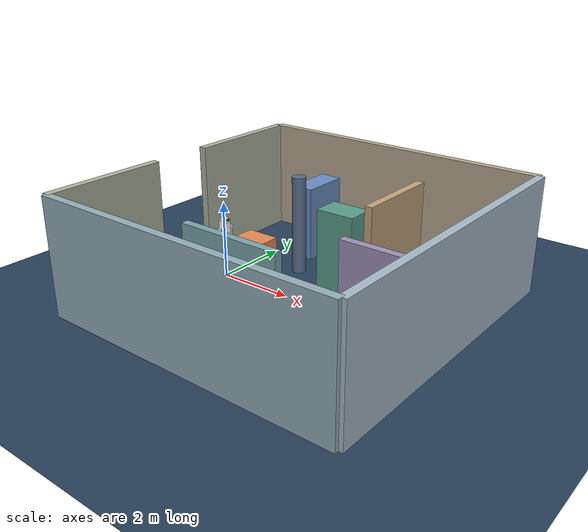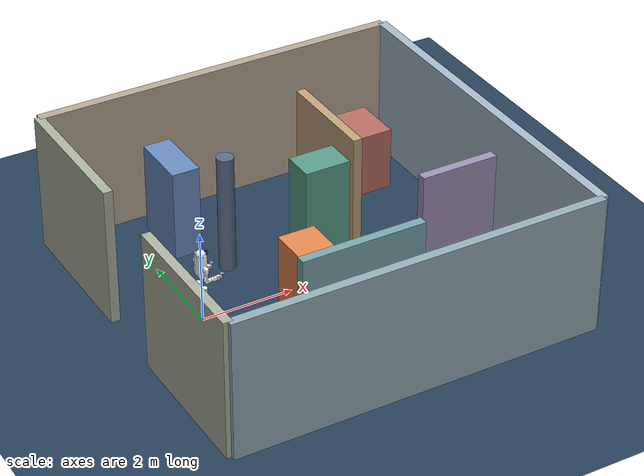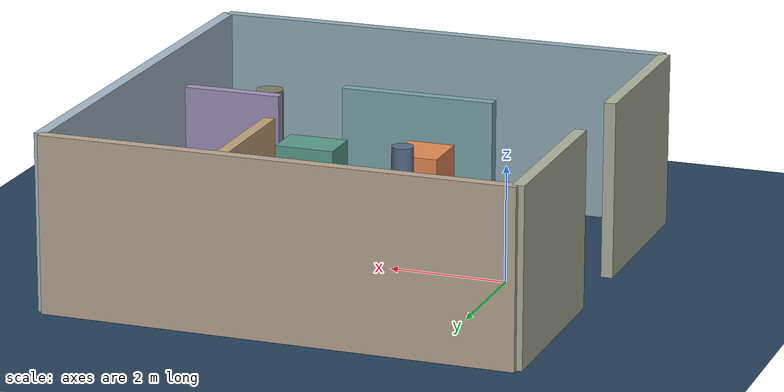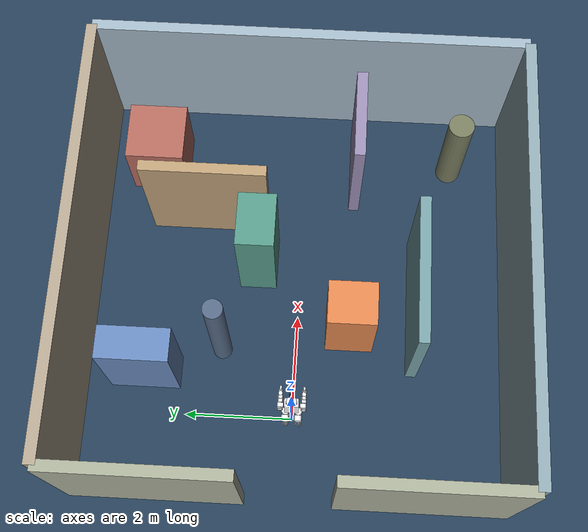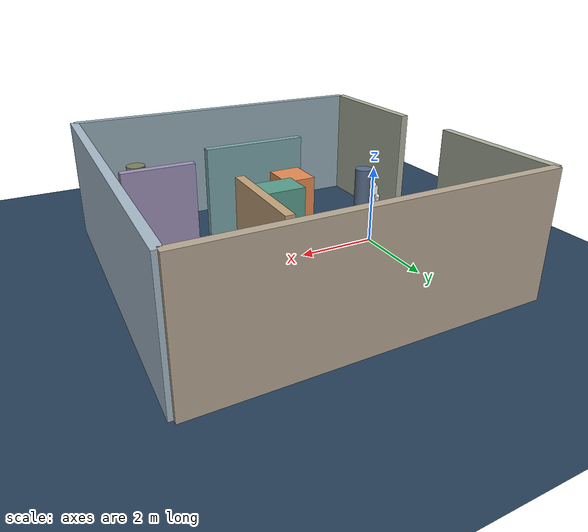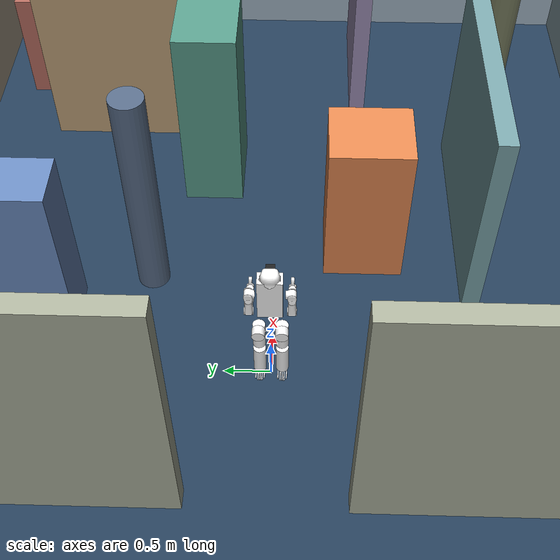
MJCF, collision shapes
<mujoco model="LingLong_L1_V1.4 RGBD scene">
  <compiler angle="radian" meshdir="../meshes/"/>

  <include file="LingLong_L1_V1.4_rgbd.xml"/>

  <statistic center="2.5 0 1.2" extent="6.0"/>
  <visual>
    <headlight diffuse="0.6 0.6 0.6" ambient="0.1 0.1 0.1" specular="0.9 0.9 0.9"/>
    <rgba haze="0.15 0.25 0.35 1"/>
    <global azimuth="-140" elevation="-20"/>
  </visual>

  <asset>
    <texture type="skybox" builtin="gradient" rgb1="0.3 0.5 0.7" rgb2="0 0 0" width="512" height="512"/>
    <texture type="2d" name="groundplane" builtin="checker" mark="edge" rgb1="0.2 0.3 0.4" rgb2="0.1 0.2 0.3" markrgb="0.8 0.8 0.8" width="300" height="300"/>
    <material name="groundplane" texture="groundplane" texuniform="true" texrepeat="5 5" reflectance="0.2"/>
  </asset>

  <worldbody>
    <light pos="1 0 3.5" dir="0 0 -1" directional="true"/>
    <!-- Generic smoke-test contact parameters; training values are not available. -->
    <geom name="floor" size="200 200 5" type="plane" group="0" material="groundplane" friction="1.2 0.02 0.001"/>

    <!-- Three-metre perimeter walls and a rear wall with a central doorway. -->
    <geom name="slam_wall_front" type="box" group="0" pos="6.5 0 1.5" size="0.10 4.0 1.5" rgba="0.65 0.73 0.79 1"/>
    <geom name="slam_wall_left" type="box" group="0" pos="2.5 4.0 1.5" size="4.0 0.10 1.5" rgba="0.72 0.66 0.58 1"/>
    <geom name="slam_wall_right" type="box" group="0" pos="2.5 -4.0 1.5" size="4.0 0.10 1.5" rgba="0.58 0.68 0.72 1"/>
    <geom name="slam_wall_rear_left" type="box" group="0" pos="-1.5 2.4 1.5" size="0.10 1.6 1.5" rgba="0.68 0.70 0.62 1"/>
    <geom name="slam_wall_rear_right" type="box" group="0" pos="-1.5 -2.4 1.5" size="0.10 1.6 1.5" rgba="0.68 0.70 0.62 1"/>

    <!-- Tall internal partitions create turns and partial occlusions for SLAM. -->
    <geom name="slam_partition_a" type="box" group="0" pos="3.9 1.8 1.3" size="0.10 1.15 1.3" rgba="0.76 0.64 0.48 1"/>
    <geom name="slam_partition_b" type="box" group="0" pos="2.3 -2.2 1.2" size="1.35 0.10 1.2" rgba="0.48 0.65 0.67 1"/>
    <geom name="slam_partition_c" type="box" group="0" pos="5.2 -1.0 1.25" size="0.85 0.10 1.25" rgba="0.62 0.57 0.72 1"/>

    <!-- Obstacles of different footprints and heights improve 3D scan structure. -->
    <geom name="slam_box_a" type="box" group="0" pos="1.8 -1.0 0.9" size="0.40 0.45 0.9" rgba="0.90 0.54 0.32 1"/>
    <geom name="slam_box_b" type="box" group="0" pos="3.1 0.8 1.15" size="0.50 0.35 1.15" rgba="0.35 0.62 0.55 1"/>
    <geom name="slam_box_c" type="box" group="0" pos="5.2 2.9 0.7" size="0.55 0.55 0.7" rgba="0.72 0.43 0.38 1"/>
    <geom name="slam_box_d" type="box" group="0" pos="0.8 2.8 1.0" size="0.30 0.65 1.0" rgba="0.42 0.55 0.76 1"/>
    <geom name="slam_post_a" type="cylinder" group="0" pos="1.3 1.4 1.3" size="0.18 1.3" rgba="0.35 0.43 0.54 1"/>
    <geom name="slam_post_b" type="cylinder" group="0" pos="5.3 -2.9 1.0" size="0.24 1.0" rgba="0.48 0.50 0.38 1"/>
  </worldbody>
</mujoco>

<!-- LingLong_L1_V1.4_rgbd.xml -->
<mujoco model="LingLong_L1_V1.4 RGBD">
  <!-- Generated from the version-matched URDF with MuJoCo 3.4.0, then supplemented for the SDK runtime. -->
  <compiler angle="radian" meshdir="../meshes/"/>

  <!-- Runtime control periods are configured by the application YAML. -->
  <option timestep="0.001"/>

  <!-- Version-matched joint damping, armature and friction are not available. -->

  <default>
    <geom group="3"/>
  </default>

  <asset>
    <mesh name="base_link" file="base_link.stl"/>
    <mesh name="left_hip_pitch_link" file="left_hip_pitch_link.STL"/>
    <mesh name="left_hip_roll_link" file="left_hip_roll_link.STL"/>
    <mesh name="left_hip_yaw_link" file="left_hip_yaw_link.STL"/>
    <mesh name="left_knee_link" file="left_knee_link.STL"/>
    <mesh name="left_ankle_pitch_link" file="left_ankle_pitch_link.STL"/>
    <mesh name="left_ankle_roll_link" file="left_ankle_roll_link.STL"/>
    <mesh name="right_hip_pitch_link" file="right_hip_pitch_link.STL"/>
    <mesh name="right_hip_roll_link" file="right_hip_roll_link.STL"/>
    <mesh name="right_hip_yaw_link" file="right_hip_yaw_link.STL"/>
    <mesh name="right_knee_link" file="right_knee_link.STL"/>
    <mesh name="right_ankle_pitch_link" file="right_ankle_pitch_link.STL"/>
    <mesh name="right_ankle_roll_link" file="right_ankle_roll_link.STL"/>
    <mesh name="head_yaw_link" content_type="model/stl" file="head_yaw_link.STL"/>
    <mesh name="head_pitch_link" file="head_pitch_link.STL"/>
    <mesh name="left_shoulder_pitch_link" content_type="model/stl" file="left_shoulder_pitch_link.STL"/>
    <mesh name="left_shoulder_roll_link" content_type="model/stl" file="left_shoulder_roll_link.STL"/>
    <mesh name="left_shoulder_yaw_link" content_type="model/stl" file="left_shoulder_yaw_link.STL"/>
    <mesh name="left_elbow_link" content_type="model/stl" file="left_elbow_link.STL"/>
    <mesh name="left_wrist_roll_link" content_type="model/stl" file="left_wrist_roll_link.STL"/>
    <mesh name="left_wrist_pitch_link" content_type="model/stl" file="left_wrist_pitch_link.STL"/>
    <mesh name="left_wrist_yaw_link" content_type="model/stl" file="left_wrist_yaw_link.STL"/>
    <mesh name="right_shoulder_pitch_link" content_type="model/stl" file="right_shoulder_pitch_link.STL"/>
    <mesh name="right_shoulder_roll_link" content_type="model/stl" file="right_shoulder_roll_link.STL"/>
    <mesh name="right_shoulder_yaw_link" content_type="model/stl" file="right_shoulder_yaw_link.STL"/>
    <mesh name="right_elbow_link" content_type="model/stl" file="right_elbow_link.STL"/>
    <mesh name="right_wrist_roll_link" content_type="model/stl" file="right_wrist_roll_link.STL"/>
    <mesh name="right_wrist_pitch_link" content_type="model/stl" file="right_wrist_pitch_link.STL"/>
    <mesh name="right_wrist_yaw_link" content_type="model/stl" file="right_wrist_yaw_link.STL"/>
  </asset>

  <worldbody>
    <body name="base_link" pos="0 0 1.0">
      <inertial pos="-0.004943 0.003037 0.104651" quat="0.999889 -0.000412984 -0.0138862 -0.0053236" mass="20.6804" diaginertia="0.651816 0.509434 0.232097"/>
      <joint name="floating_base_joint" type="free"/>
      <geom type="mesh" contype="0" conaffinity="0" group="1" density="0" rgba="1 1 1 1" mesh="base_link"/>
      <geom size="0.075 0.125 0.25" pos="0 0 0.3" type="box" rgba="1 1 1 1"/>
      <body name="left_hip_pitch_link" pos="0 0.11655 -0.077">
        <inertial pos="-0.084164 0.017857 -0.033361" quat="0.598881 0.223776 0.593448 0.488963" mass="2.80157" diaginertia="0.0184164 0.0164788 0.00698685"/>
        <joint name="left_hip_pitch_joint" pos="0 0 0" axis="0 1 0" range="-1.5708 0.785398" actuatorfrcrange="-330 330"/>
        <geom type="mesh" contype="0" conaffinity="0" group="1" density="0" rgba="1 1 1 1" mesh="left_hip_pitch_link"/>
        <geom size="0.065 0.05" pos="-0.14 0 -0.05" quat="0.707388 0 0.706825 0" type="cylinder" rgba="1 1 1 1"/>
        <body name="left_hip_roll_link" pos="0 0 -0.05">
          <inertial pos="-0.002128 -7.9e-05 -0.088996" quat="0.450855 0.545899 0.52601 0.471208" mass="2.0916" diaginertia="0.00765753 0.00735295 0.00392751"/>
          <joint name="left_hip_roll_joint" pos="0 0 0" axis="1 0 0" range="-0.349066 0.785398" actuatorfrcrange="-150 150"/>
          <geom type="mesh" contype="0" conaffinity="0" group="1" density="0" rgba="1 1 1 1" mesh="left_hip_roll_link"/>
          <geom size="0.065 0.04" pos="0 0 -0.08" type="cylinder" rgba="1 1 1 1"/>
          <body name="left_hip_yaw_link">
            <inertial pos="0.003857 -0.00632 -0.285854" quat="0.724164 -0.0100522 0.0138246 0.689416" mass="3.91508" diaginertia="0.0368522 0.036 0.00846585"/>
            <joint name="left_hip_yaw_joint" pos="0 0 0" axis="0 0 1" range="-2.0944 2.13803" actuatorfrcrange="-130 130"/>
            <geom type="mesh" contype="0" conaffinity="0" group="1" density="0" rgba="1 1 1 1" mesh="left_hip_yaw_link"/>
            <geom size="0.065 0.1" pos="0 0 -0.25" type="cylinder" rgba="1 1 1 1"/>
            <body name="left_knee_link" pos="0 0 -0.364">
              <inertial pos="0.002587 -0.000876 -0.181945" quat="0.704682 0.0194667 -0.0213112 0.708935" mass="4.14246" diaginertia="0.047775 0.0463692 0.00748385"/>
              <joint name="left_knee_joint" pos="0 0 0" axis="0 1 0" range="-0.174533 1.90241" actuatorfrcrange="-150 150"/>
              <geom type="mesh" contype="0" conaffinity="0" group="1" density="0" rgba="1 1 1 1" mesh="left_knee_link"/>
              <geom size="0.065 0.175" pos="0 0 -0.24" type="cylinder" rgba="1 1 1 1"/>
              <body name="left_ankle_pitch_link" pos="0 0 -0.42">
                <inertial pos="-0.000216 0 0" quat="0 0.707107 0 0.707107" mass="0.139668" diaginertia="5.6e-05 3.1e-05 2.9e-05"/>
                <joint name="left_ankle_pitch_joint" pos="0 0 0" axis="0 1 0" range="-0.802851 0.602139" actuatorfrcrange="-90 90"/>
                <geom type="mesh" contype="0" conaffinity="0" group="1" density="0" rgba="1 1 1 1" mesh="left_ankle_pitch_link"/>
                <body name="left_ankle_roll_link">
                  <inertial pos="0.008646 4.5e-05 -0.044395" quat="-0.000247978 0.725518 2.51124e-05 0.688203" mass="1.10301" diaginertia="0.00639506 0.006049 0.000984944"/>
                  <joint name="left_ankle_roll_joint" pos="0 0 0" axis="1 0 0" range="-0.523599 0.523599" actuatorfrcrange="-90 90"/>
                  <geom type="mesh" contype="0" conaffinity="0" group="1" density="0" rgba="1 1 1 1" mesh="left_ankle_roll_link"/>
                  <geom size="0.007 0.135" pos="0.02 0 -0.07" quat="0.707105 0 -0.707108 0" type="cylinder" rgba="1 1 1 1"/>
                  <geom size="0.007 0.115" pos="0.02 -0.044 -0.07" quat="0.707105 0 -0.707108 0" type="cylinder" rgba="1 1 1 1"/>
                  <geom size="0.007 0.115" pos="0.02 0.044 -0.07" quat="0.707105 0 -0.707108 0" type="cylinder" rgba="1 1 1 1"/>
                  <geom size="0.007 0.135" pos="0.02 -0.02 -0.07" quat="0.707105 0 -0.707108 0" type="cylinder" rgba="1 1 1 1"/>
                  <geom size="0.007 0.135" pos="0.02 0.02 -0.07" quat="0.707105 0 -0.707108 0" type="cylinder" rgba="1 1 1 1"/>
                </body>
              </body>
            </body>
          </body>
        </body>
      </body>
      <body name="right_hip_pitch_link" pos="0 -0.11655 -0.077">
        <inertial pos="-0.084164 -0.017857 -0.033361" quat="0.488963 0.593448 0.223776 0.598881" mass="2.80157" diaginertia="0.0184164 0.0164788 0.00698685"/>
        <joint name="right_hip_pitch_joint" pos="0 0 0" axis="0 1 0" range="-1.5708 0.785398" actuatorfrcrange="-330 330"/>
        <geom type="mesh" contype="0" conaffinity="0" group="1" density="0" rgba="1 1 1 1" mesh="right_hip_pitch_link"/>
        <geom size="0.065 0.05" pos="-0.14 0 -0.05" quat="0.707388 0 0.706825 0" type="cylinder" rgba="1 1 1 1"/>
        <body name="right_hip_roll_link" pos="0 0 -0.05">
          <inertial pos="-0.002128 -7.9e-05 -0.088996" quat="0.471208 0.52601 0.545899 0.450855" mass="2.0916" diaginertia="0.00765753 0.00735295 0.00392751"/>
          <joint name="right_hip_roll_joint" pos="0 0 0" axis="1 0 0" range="-0.785398 0.349066" actuatorfrcrange="-150 150"/>
          <geom type="mesh" contype="0" conaffinity="0" group="1" density="0" rgba="1 1 1 1" mesh="right_hip_roll_link"/>
          <geom size="0.065 0.04" pos="0 0 -0.08" type="cylinder" rgba="1 1 1 1"/>
          <body name="right_hip_yaw_link">
            <inertial pos="0.003857 0.00632 -0.285854" quat="0.69435 0.00943215 -0.0142737 0.719434" mass="3.91508" diaginertia="0.0368512 0.036001 0.00846582"/>
            <joint name="right_hip_yaw_joint" pos="0 0 0" axis="0 0 1" range="-2.13803 2.0944" actuatorfrcrange="-130 130"/>
            <geom type="mesh" contype="0" conaffinity="0" group="1" density="0" rgba="1 1 1 1" mesh="right_hip_yaw_link"/>
            <geom size="0.065 0.1" pos="0 0 -0.25" type="cylinder" rgba="1 1 1 1"/>
            <body name="right_knee_link" pos="0 0 -0.364">
              <inertial pos="0.002587 0.000876 -0.181945" quat="0.708935 -0.0213112 0.0194667 0.704682" mass="4.14246" diaginertia="0.047775 0.0463692 0.00748385"/>
              <joint name="right_knee_joint" pos="0 0 0" axis="0 1 0" range="-0.174533 1.90241" actuatorfrcrange="-150 150"/>
              <geom type="mesh" contype="0" conaffinity="0" group="1" density="0" rgba="1 1 1 1" mesh="right_knee_link"/>
              <geom size="0.065 0.175" pos="0 0 -0.23" type="cylinder" rgba="1 1 1 1"/>
              <body name="right_ankle_pitch_link" pos="0 0 -0.42">
                <inertial pos="-0.000216 0 0" quat="0 0.707107 0 0.707107" mass="0.139668" diaginertia="5.6e-05 3.1e-05 2.9e-05"/>
                <joint name="right_ankle_pitch_joint" pos="0 0 0" axis="0 1 0" range="-0.802851 0.602139" actuatorfrcrange="-90 90"/>
                <geom type="mesh" contype="0" conaffinity="0" group="1" density="0" rgba="1 1 1 1" mesh="right_ankle_pitch_link"/>
                <body name="right_ankle_roll_link">
                  <inertial pos="0.008646 -4.5e-05 -0.044395" quat="0.000247978 0.725518 -2.51124e-05 0.688203" mass="1.10301" diaginertia="0.00639506 0.006049 0.000984944"/>
                  <joint name="right_ankle_roll_joint" pos="0 0 0" axis="1 0 0" range="-0.523599 0.523599" actuatorfrcrange="-90 90"/>
                  <geom type="mesh" contype="0" conaffinity="0" group="1" density="0" rgba="1 1 1 1" mesh="right_ankle_roll_link"/>
                  <geom size="0.007 0.135" pos="0.02 0 -0.07" quat="0.707105 0 -0.707108 0" type="cylinder" rgba="1 1 1 1"/>
                  <geom size="0.007 0.115" pos="0.02 -0.044 -0.07" quat="0.707105 0 -0.707108 0" type="cylinder" rgba="1 1 1 1"/>
                  <geom size="0.007 0.115" pos="0.02 0.044 -0.07" quat="0.707105 0 -0.707108 0" type="cylinder" rgba="1 1 1 1"/>
                  <geom size="0.007 0.135" pos="0.02 -0.02 -0.07" quat="0.707105 0 -0.707108 0" type="cylinder" rgba="1 1 1 1"/>
                  <geom size="0.007 0.135" pos="0.02 0.02 -0.07" quat="0.707105 0 -0.707108 0" type="cylinder" rgba="1 1 1 1"/>
                </body>
              </body>
            </body>
          </body>
        </body>
      </body>
      <body name="head_yaw_link" pos="0 0 0.4168">
        <inertial pos="-1.8e-05 0.003948 -0.004408" quat="0.466869 0.883905 0.0130707 -0.023959" mass="0.518638" diaginertia="0.000252219 0.000179463 0.000177318"/>
        <joint name="head_yaw_joint" pos="0 0 0" axis="0 0 1" range="-1.5708 1.5708" actuatorfrcrange="-27 27"/>
        <geom type="mesh" contype="0" conaffinity="0" group="1" density="0" rgba="1 1 1 1" mesh="head_yaw_link"/>
        <geom type="mesh" rgba="1 1 1 1" mesh="head_yaw_link"/>
        <body name="head_pitch_link">
          <inertial pos="0.00952 -0.000338 0.108918" quat="0.973673 0.106966 0.198224 -0.0350127" mass="1.20264" diaginertia="0.00689685 0.00580594 0.00522521"/>
          <joint name="head_pitch_joint" pos="0 0 0" axis="0 1 0" range="-0.785398 0.785398" actuatorfrcrange="-27 27"/>
          <camera name="rgbd_camera" pos="0.12 0 0.15" xyaxes="0 -1 0 0 0 1" fovy="60"/>
          <site name="rgbd_camera_site" type="box" pos="0.12 0 0.15" size="0.025 0.045 0.02" rgba="0.12 0.12 0.12 1"/>
          <geom type="mesh" contype="0" conaffinity="0" group="1" density="0" rgba="1 1 1 1" mesh="head_pitch_link"/>
          <geom type="mesh" rgba="1 1 1 1" mesh="head_pitch_link"/>
        </body>
      </body>
      <body name="left_shoulder_pitch_link" pos="0 0.21175 0.309">
        <inertial pos="-0.005683 -0.007852 7.2e-05" quat="0.690719 0.716915 0.035467 -0.0876488" mass="1.13233" diaginertia="0.00106325 0.00104987 0.000747878"/>
        <joint name="left_shoulder_pitch_joint" pos="0 0 0" axis="0 1 0" range="-2.96706 2.96706" actuatorfrcrange="-97 97"/>
        <geom type="mesh" contype="0" conaffinity="0" group="1" density="0" rgba="1 1 1 1" mesh="left_shoulder_pitch_link"/>
        <geom type="mesh" rgba="1 1 1 1" mesh="left_shoulder_pitch_link"/>
        <body name="left_shoulder_roll_link">
          <inertial pos="-0.001957 0 -0.059713" quat="0.706173 -0.0363325 -0.0363325 0.706173" mass="0.893031" diaginertia="0.002027 0.00163878 0.00109022"/>
          <joint name="left_shoulder_roll_joint" pos="0 0 0" axis="1 0 0" range="-0.0872665 3.05433" actuatorfrcrange="-97 97"/>
          <geom type="mesh" contype="0" conaffinity="0" group="1" density="0" rgba="1 1 1 1" mesh="left_shoulder_roll_link"/>
          <geom type="mesh" rgba="1 1 1 1" mesh="left_shoulder_roll_link"/>
          <body name="left_shoulder_yaw_link">
            <inertial pos="-0.004186 -0.002151 -0.22343" quat="0.959028 -0.00419165 -0.0329792 -0.281354" mass="0.958875" diaginertia="0.00345777 0.00345237 0.000708862"/>
            <joint name="left_shoulder_yaw_joint" pos="0 0 0" axis="0 0 1" range="-2.96706 2.96706" actuatorfrcrange="-27 27"/>
            <geom type="mesh" contype="0" conaffinity="0" group="1" density="0" rgba="1 1 1 1" mesh="left_shoulder_yaw_link"/>
            <geom type="mesh" rgba="1 1 1 1" mesh="left_shoulder_yaw_link"/>
            <body name="left_elbow_link" pos="5e-05 0 -0.26">
              <inertial pos="0.042253 -0.001579 -0.003042" quat="0.000636661 0.710195 0.00773058 0.703962" mass="0.422895" diaginertia="0.00109807 0.000846985 0.000643945"/>
              <joint name="left_elbow_joint" pos="0 0 0" axis="0 1 0" range="-0.785398 1.5708" actuatorfrcrange="-27 27"/>
              <geom type="mesh" contype="0" conaffinity="0" group="1" density="0" rgba="1 1 1 1" mesh="left_elbow_link"/>
              <geom type="mesh" rgba="1 1 1 1" mesh="left_elbow_link"/>
              <body name="left_wrist_roll_link" pos="0.198 0 0">
                <inertial pos="-0.054086 -0.001143 3e-05" quat="0.0207748 0.706802 -0.0207748 0.706802" mass="0.699632" diaginertia="0.001133 0.000952941 0.000680059"/>
                <joint name="left_wrist_roll_joint" pos="0 0 0" axis="1 0 0" range="-2.96706 2.96706" actuatorfrcrange="-7 7"/>
                <geom type="mesh" contype="0" conaffinity="0" group="1" density="0" rgba="1 1 1 1" mesh="left_wrist_roll_link"/>
                <geom type="mesh" rgba="1 1 1 1" mesh="left_wrist_roll_link"/>
                <body name="left_wrist_pitch_link">
                  <inertial pos="0.030943 -0.00073 0.001059" quat="0.536476 0.445315 0.538992 0.472627" mass="0.975584" diaginertia="0.00143392 0.00143136 0.000580719"/>
                  <joint name="left_wrist_pitch_joint" pos="0 0 0" axis="0 1 0" range="-1.39626 1.39626" actuatorfrcrange="-7 7"/>
                  <geom type="mesh" contype="0" conaffinity="0" group="1" density="0" rgba="1 1 1 1" mesh="left_wrist_pitch_link"/>
                  <geom type="mesh" rgba="1 1 1 1" mesh="left_wrist_pitch_link"/>
                  <body name="left_wrist_yaw_link" pos="0.062 0 0">
                    <inertial pos="0.039714 6e-06 0.012519" quat="0.653681 0.269631 0.269631 0.653681" mass="0.398372" diaginertia="0.000947 0.000802003 0.000463997"/>
                    <joint name="left_wrist_yaw_joint" pos="0 0 0" axis="0 0 1" range="-1.39626 1.39626" actuatorfrcrange="-7 7"/>
                    <geom type="mesh" contype="0" conaffinity="0" group="1" density="0" rgba="1 1 1 1" mesh="left_wrist_yaw_link"/>
                    <geom type="mesh" rgba="1 1 1 1" mesh="left_wrist_yaw_link"/>
                  </body>
                </body>
              </body>
            </body>
          </body>
        </body>
      </body>
      <body name="right_shoulder_pitch_link" pos="0 -0.21175 0.309">
        <inertial pos="-0.005683 0.007852 7.2e-05" quat="0.716915 0.690719 0.0876488 -0.035467" mass="1.13233" diaginertia="0.00106325 0.00104987 0.000747878"/>
        <joint name="right_shoulder_pitch_joint" pos="0 0 0" axis="0 1 0" range="-2.96706 2.96706" actuatorfrcrange="-97 97"/>
        <geom type="mesh" contype="0" conaffinity="0" group="1" density="0" rgba="1 1 1 1" mesh="right_shoulder_pitch_link"/>
        <geom type="mesh" rgba="1 1 1 1" mesh="right_shoulder_pitch_link"/>
        <body name="right_shoulder_roll_link">
          <inertial pos="-0.001957 0 -0.059713" quat="0.706173 -0.0363325 -0.0363325 0.706173" mass="0.893031" diaginertia="0.002027 0.00163878 0.00109022"/>
          <joint name="right_shoulder_roll_joint" pos="0 0 0" axis="1 0 0" range="-3.05433 0.0872665" actuatorfrcrange="-97 97"/>
          <geom type="mesh" contype="0" conaffinity="0" group="1" density="0" rgba="1 1 1 1" mesh="right_shoulder_roll_link"/>
          <geom type="mesh" rgba="1 1 1 1" mesh="right_shoulder_roll_link"/>
          <body name="right_shoulder_yaw_link">
            <inertial pos="-0.004186 0.002151 -0.22343" quat="0.959028 0.00419165 -0.0329792 0.281354" mass="0.958875" diaginertia="0.00345777 0.00345237 0.000708862"/>
            <joint name="right_shoulder_yaw_joint" pos="0 0 0" axis="0 0 1" range="-2.96706 2.96706" actuatorfrcrange="-27 27"/>
            <geom type="mesh" contype="0" conaffinity="0" group="1" density="0" rgba="1 1 1 1" mesh="right_shoulder_yaw_link"/>
            <geom type="mesh" rgba="1 1 1 1" mesh="right_shoulder_yaw_link"/>
            <body name="right_elbow_link" pos="0 0 -0.26">
              <inertial pos="0.042253 0.001579 -0.003042" quat="-0.000636661 0.710195 -0.00773058 0.703962" mass="0.422895" diaginertia="0.00109807 0.000846985 0.000643945"/>
              <joint name="right_elbow_joint" pos="0 0 0" axis="0 1 0" range="-0.785398 1.5708" actuatorfrcrange="-27 27"/>
              <geom type="mesh" contype="0" conaffinity="0" group="1" density="0" rgba="1 1 1 1" mesh="right_elbow_link"/>
              <geom type="mesh" rgba="1 1 1 1" mesh="right_elbow_link"/>
              <body name="right_wrist_roll_link" pos="0.198 0 0">
                <inertial pos="-0.054086 0.001143 3e-05" quat="-0.0207748 0.706802 0.0207748 0.706802" mass="0.699632" diaginertia="0.001133 0.000952941 0.000680059"/>
                <joint name="right_wrist_roll_joint" pos="0 0 0" axis="1 0 0" range="-2.96706 2.96706" actuatorfrcrange="-7 7"/>
                <geom type="mesh" contype="0" conaffinity="0" group="1" density="0" rgba="1 1 1 1" mesh="right_wrist_roll_link"/>
                <geom type="mesh" rgba="1 1 1 1" mesh="right_wrist_roll_link"/>
                <body name="right_wrist_pitch_link">
                  <inertial pos="0.030943 0.00073 0.001059" quat="0.472627 0.538992 0.445315 0.536476" mass="0.975584" diaginertia="0.00143392 0.00143136 0.000580719"/>
                  <joint name="right_wrist_pitch_joint" pos="0 0 0" axis="0 1 0" range="-1.39626 1.39626" actuatorfrcrange="-7 7"/>
                  <geom type="mesh" contype="0" conaffinity="0" group="1" density="0" rgba="1 1 1 1" mesh="right_wrist_pitch_link"/>
                  <geom type="mesh" rgba="1 1 1 1" mesh="right_wrist_pitch_link"/>
                  <body name="right_wrist_yaw_link" pos="0.062 0 0">
                    <inertial pos="0.039714 6e-06 0.012519" quat="0.653681 0.269631 0.269631 0.653681" mass="0.398372" diaginertia="0.000947 0.000802003 0.000463997"/>
                    <joint name="right_wrist_yaw_joint" pos="0 0 0" axis="0 0 1" range="-1.39626 1.39626" actuatorfrcrange="-7 7"/>
                    <geom type="mesh" contype="0" conaffinity="0" group="1" density="0" rgba="1 1 1 1" mesh="right_wrist_yaw_link"/>
                    <geom type="mesh" rgba="1 1 1 1" mesh="right_wrist_yaw_link"/>
                  </body>
                </body>
              </body>
            </body>
          </body>
        </body>
      </body>
    </body>
  </worldbody>

  <!-- Source collision proxies overlap at the zero pose. -->
  <contact>
    <exclude body1="base_link" body2="head_pitch_link"/>
    <exclude body1="left_wrist_roll_link" body2="left_wrist_yaw_link"/>
    <exclude body1="right_wrist_roll_link" body2="right_wrist_yaw_link"/>
  </contact>

  <!-- SDK/URDF actuator order: legs 12, head 2, arms 14. -->
  <actuator>
    <motor name="left_hip_pitch_joint" joint="left_hip_pitch_joint"/>
    <motor name="left_hip_roll_joint" joint="left_hip_roll_joint"/>
    <motor name="left_hip_yaw_joint" joint="left_hip_yaw_joint"/>
    <motor name="left_knee_joint" joint="left_knee_joint"/>
    <motor name="left_ankle_pitch_joint" joint="left_ankle_pitch_joint"/>
    <motor name="left_ankle_roll_joint" joint="left_ankle_roll_joint"/>
    <motor name="right_hip_pitch_joint" joint="right_hip_pitch_joint"/>
    <motor name="right_hip_roll_joint" joint="right_hip_roll_joint"/>
    <motor name="right_hip_yaw_joint" joint="right_hip_yaw_joint"/>
    <motor name="right_knee_joint" joint="right_knee_joint"/>
    <motor name="right_ankle_pitch_joint" joint="right_ankle_pitch_joint"/>
    <motor name="right_ankle_roll_joint" joint="right_ankle_roll_joint"/>
    <motor name="head_yaw_joint" joint="head_yaw_joint"/>
    <motor name="head_pitch_joint" joint="head_pitch_joint"/>
    <motor name="left_shoulder_pitch_joint" joint="left_shoulder_pitch_joint"/>
    <motor name="left_shoulder_roll_joint" joint="left_shoulder_roll_joint"/>
    <motor name="left_shoulder_yaw_joint" joint="left_shoulder_yaw_joint"/>
    <motor name="left_elbow_joint" joint="left_elbow_joint"/>
    <motor name="left_wrist_roll_joint" joint="left_wrist_roll_joint"/>
    <motor name="left_wrist_pitch_joint" joint="left_wrist_pitch_joint"/>
    <motor name="left_wrist_yaw_joint" joint="left_wrist_yaw_joint"/>
    <motor name="right_shoulder_pitch_joint" joint="right_shoulder_pitch_joint"/>
    <motor name="right_shoulder_roll_joint" joint="right_shoulder_roll_joint"/>
    <motor name="right_shoulder_yaw_joint" joint="right_shoulder_yaw_joint"/>
    <motor name="right_elbow_joint" joint="right_elbow_joint"/>
    <motor name="right_wrist_roll_joint" joint="right_wrist_roll_joint"/>
    <motor name="right_wrist_pitch_joint" joint="right_wrist_pitch_joint"/>
    <motor name="right_wrist_yaw_joint" joint="right_wrist_yaw_joint"/>
  </actuator>

</mujoco>
